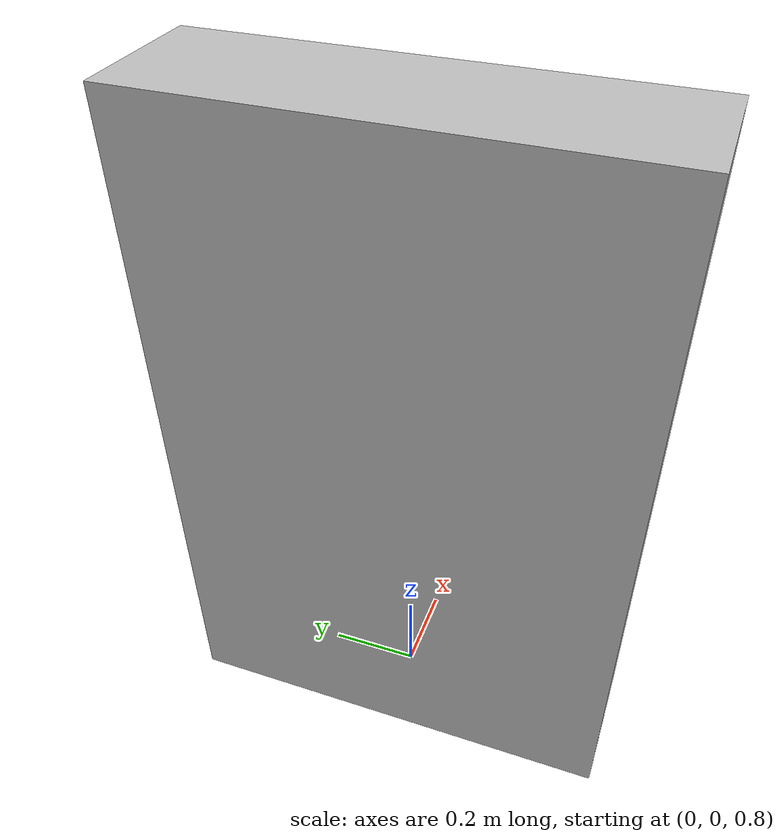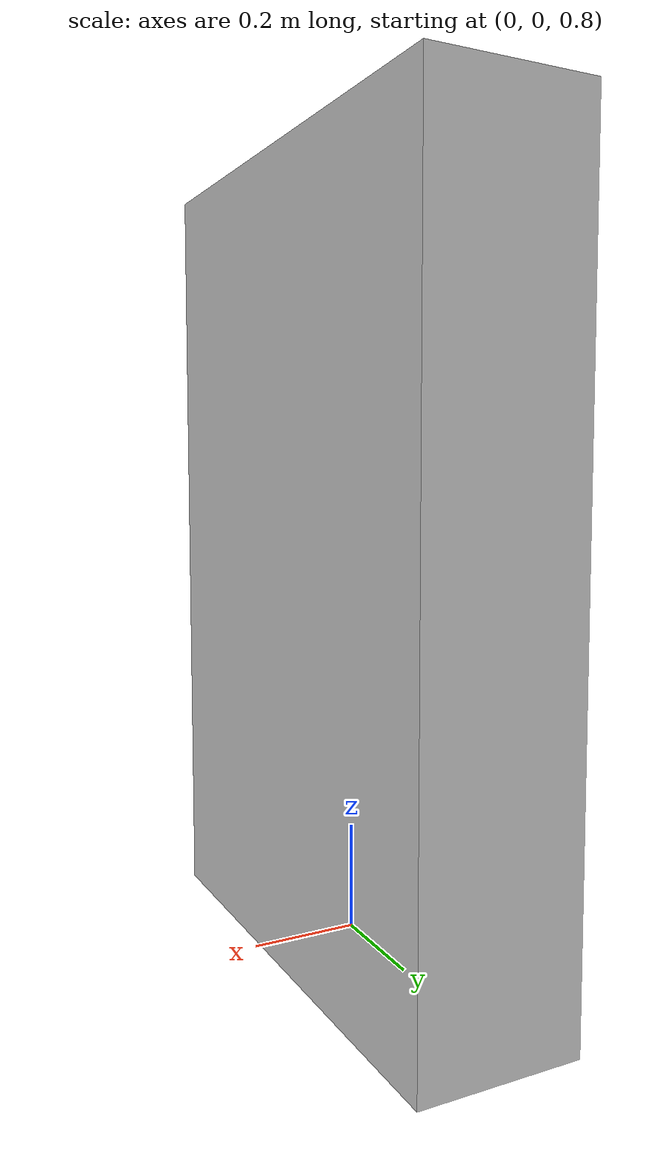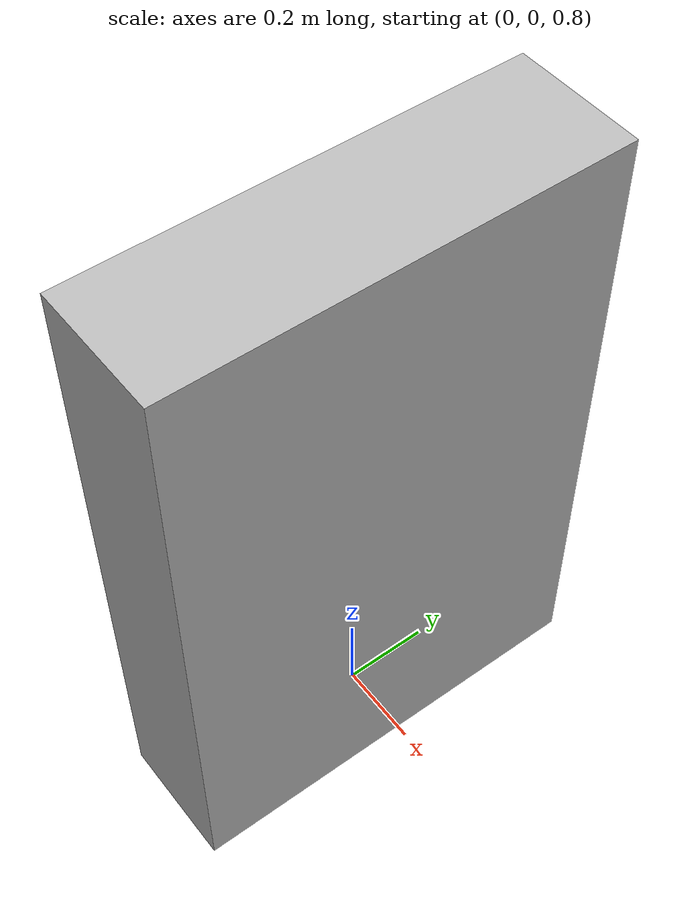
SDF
<?xml version="1.0"?>

<sdf version="1.6">
  <model name="moving_wall">
    <static>false</static>

    <pose>0 0 1.5 0 0 0</pose>

    <link name="wall_link">
      <inertial>
        <mass>100.0</mass>
        <inertia>
          <ixx>34.17</ixx>
          <iyy>34.17</iyy>
          <izz>3.33</izz>
        </inertia>
      </inertial>

      <collision name="collision">
        <geometry>
          <box>
            <size>0.3 1.0 1.5</size>
          </box>
        </geometry>
      </collision>

      <visual name="visual">
        <geometry>
          <box>
            <size>0.3 1.0 1.5</size>
          </box>
        </geometry>
      </visual>
    </link>

    <plugin name="moving_wall_plugin"
            filename="libmoving_wall_plugin.so"/>
  </model>
</sdf>
